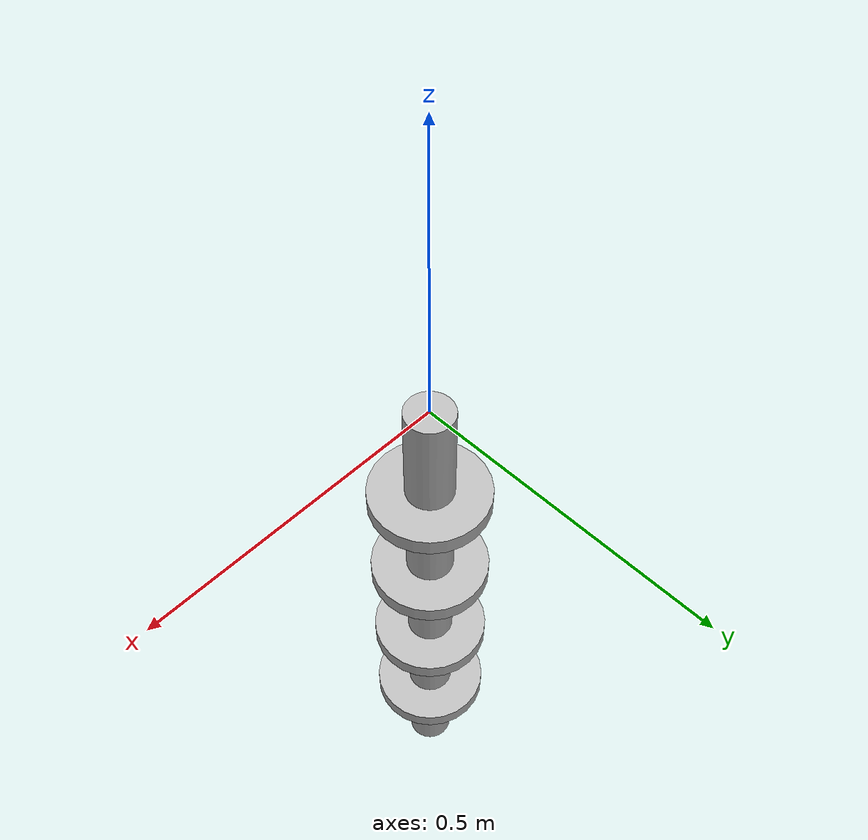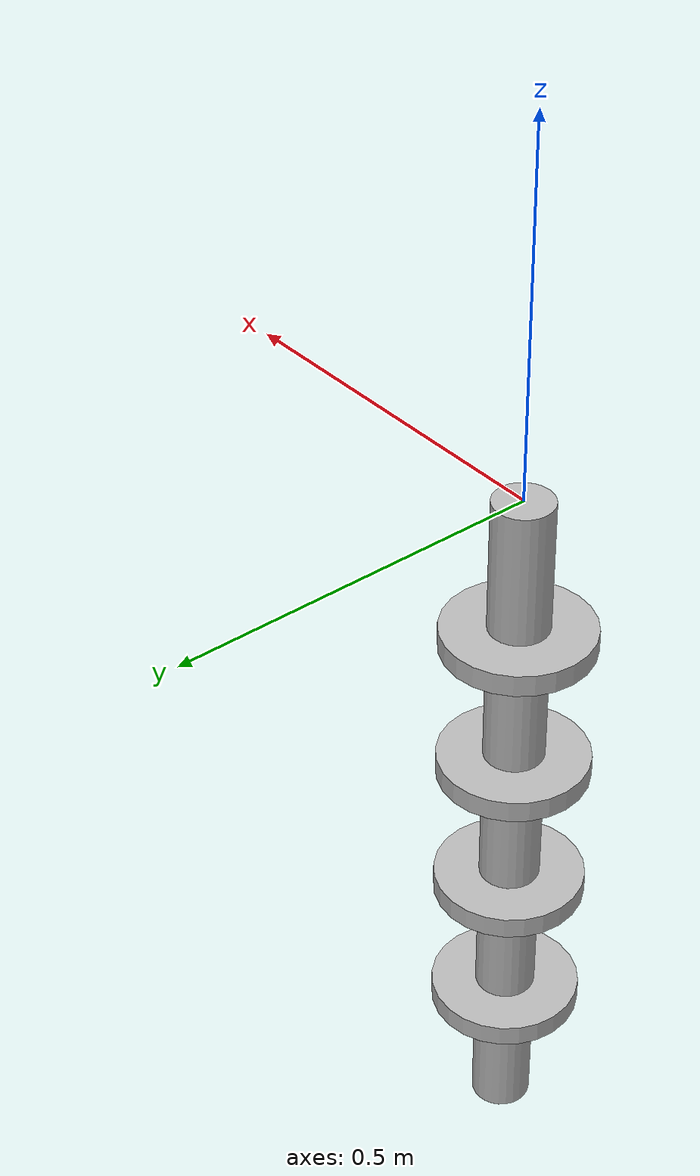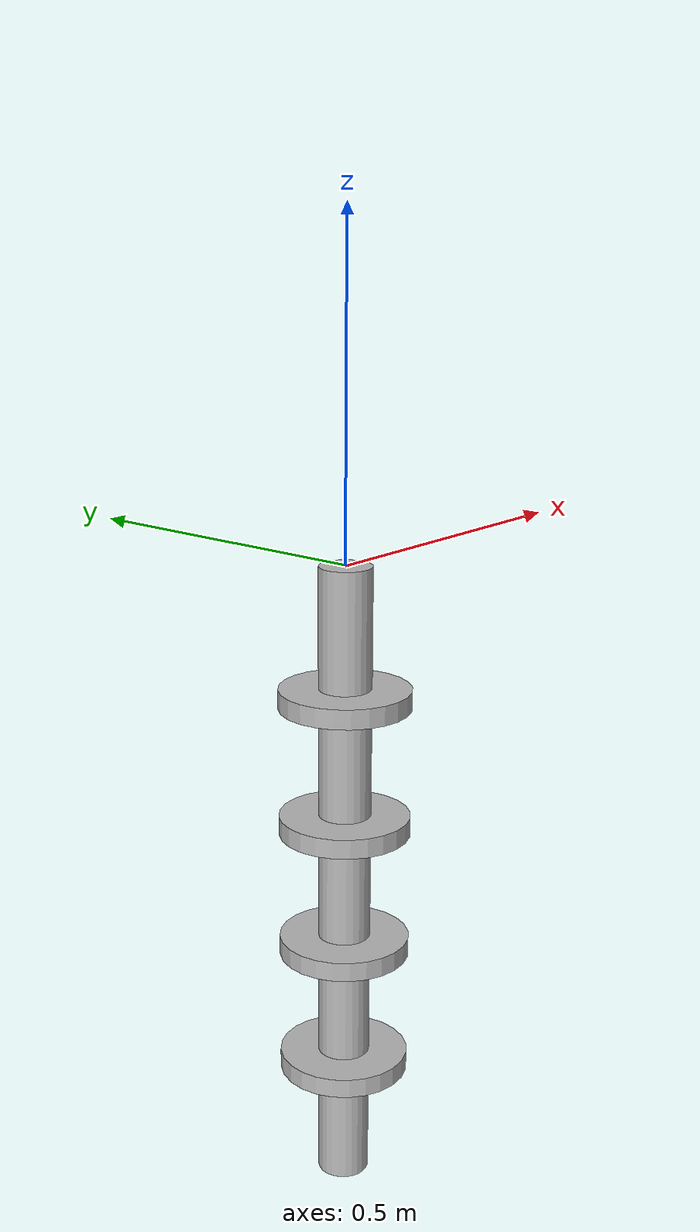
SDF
<?xml version='1.0'?>
<sdf version='1.6'>
	<model name='Aislador'>
		<self_collide>false</self_collide>
		<link name='aislador'>
			<visual name = "visual_palo">
				<pose>0 0 -0.5 0 0 0</pose>
				<geometry>
					<cylinder>
						<radius>0.04</radius>
						<length>1</length>
					</cylinder>
				</geometry>
			</visual>
			<collision name = "collision_palo">
				<pose>0 0 -0.5 0 0 0</pose>
				<geometry>
					<cylinder>
						<radius>0.04</radius>
						<length>1</length>
					</cylinder>
				</geometry>
			</collision>

			<visual name='visual_cilindro_1'>
				<pose>0 0 -0.2 0 0 0</pose>
		        <geometry>
			        <cylinder>
			            <radius>0.1</radius>
			            <length>0.03</length>
			        </cylinder>
		        </geometry>
      		</visual>
      		<collision name='visual_cilindro_1'>
      			<pose>0 0 -0.2 0 0 0</pose>
        		<geometry>
          			<cylinder>
			            <radius>0.1</radius>
			            <length>0.03</length>
          			</cylinder>
        		</geometry>
      		</collision>

			<visual name='visual_cilindro_2'>
				<pose>0 0 -0.4 0 0 0</pose>
		        <geometry>
			        <cylinder>
			            <radius>0.1</radius>
			            <length>0.03</length>
			        </cylinder>
		        </geometry>
      		</visual>
      		<collision name='visual_cilindro_2'>
      			<pose>0 0 -0.4 0 0 0</pose>
        		<geometry>
          			<cylinder>
			            <radius>0.1</radius>
			            <length>0.03</length>
          			</cylinder>
        		</geometry>
      		</collision>

			<visual name='visual_cilindro_3'>
				<pose>0 0 -0.6000000000000001 0 0 0</pose>
		        <geometry>
			        <cylinder>
			            <radius>0.1</radius>
			            <length>0.03</length>
			        </cylinder>
		        </geometry>
      		</visual>
      		<collision name='visual_cilindro_3'>
      			<pose>0 0 -0.6000000000000001 0 0 0</pose>
        		<geometry>
          			<cylinder>
			            <radius>0.1</radius>
			            <length>0.03</length>
          			</cylinder>
        		</geometry>
      		</collision>

			<visual name='visual_cilindro_4'>
				<pose>0 0 -0.8 0 0 0</pose>
		        <geometry>
			        <cylinder>
			            <radius>0.1</radius>
			            <length>0.03</length>
			        </cylinder>
		        </geometry>
      		</visual>
      		<collision name='visual_cilindro_4'>
      			<pose>0 0 -0.8 0 0 0</pose>
        		<geometry>
          			<cylinder>
			            <radius>0.1</radius>
			            <length>0.03</length>
          			</cylinder>
        		</geometry>
      		</collision>

			<inertial>
				<pose>0 0 -0.5 0 0 0</pose>
				<mass>1</mass>
				<inertia>
			        <ixx>1</ixx>
			        <iyy>1</iyy>
			        <izz>1</izz>
			    </inertia>
			</inertial>
		</link>
  	</model>
</sdf>
